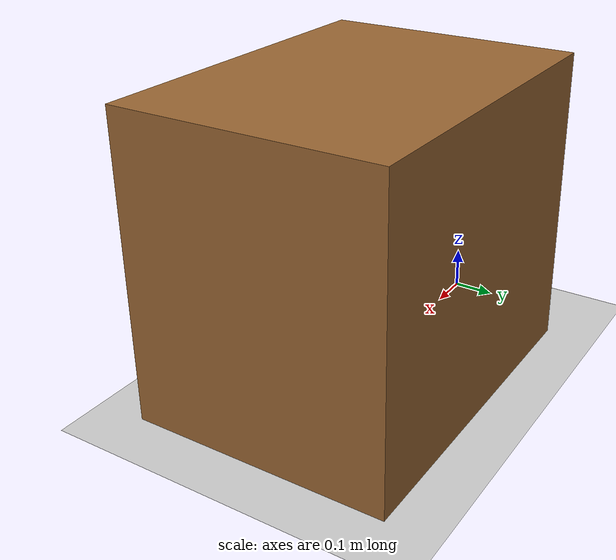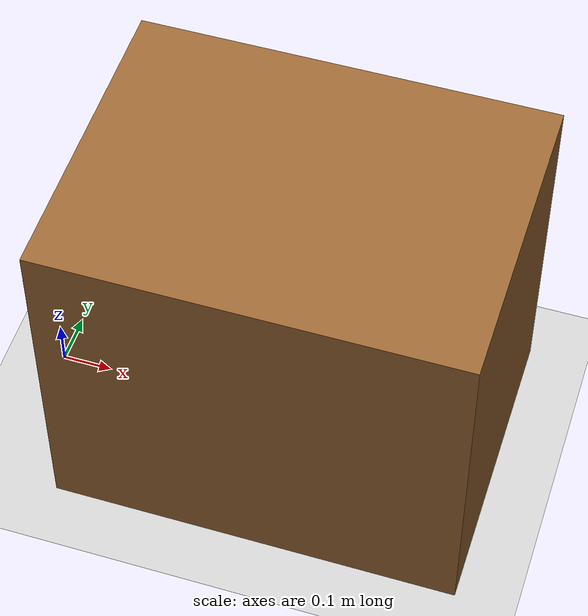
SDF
<?xml version="1.0"?>
<sdf version="1.6">
  <world name="arm_world">
    <plugin name="gazebo_ros_init" filename="libgazebo_ros_init.so"/>
    <plugin name="gazebo_ros_factory" filename="libgazebo_ros_factory.so"/>
    <plugin name="gazebo_ros_state" filename="libgazebo_ros_state.so"/>
    <include>
      <uri>model://sun</uri>
    </include>
    <include>
      <uri>model://ground_plane</uri>
    </include>

    <model name="table">
      <static>true</static>
      <pose>0.5 0 0.35 0 0 0</pose>
      <link name="link">
        <collision name="collision">
          <geometry>
            <box>
              <size>0.8 0.6 0.7</size>
            </box>
          </geometry>
        </collision>
        <visual name="visual">
          <geometry>
            <box>
              <size>0.8 0.6 0.7</size>
            </box>
          </geometry>
          <material>
            <ambient>0.6 0.4 0.2 1</ambient>
            <diffuse>0.6 0.4 0.2 1</diffuse>
          </material>
        </visual>
      </link>
    </model>

    <model name="overhead_camera_rig">
      <static>true</static>
      <pose>0.5 0 1.15 0 1.5708 0</pose>
      <link name="link">
        <sensor name="overhead_rgb_camera" type="camera">
          <update_rate>30</update_rate>
          <camera>
            <horizontal_fov>1.2</horizontal_fov>
            <image>
              <width>800</width>
              <height>600</height>
              <format>R8G8B8</format>
            </image>
            <clip>
              <near>0.1</near>
              <far>20.0</far>
            </clip>
          </camera>
          <plugin name="gazebo_ros_overhead_rgb_camera" filename="libgazebo_ros_camera.so">
            <ros>
              <namespace>/overhead_camera</namespace>
            </ros>
            <camera_name>overhead_rgb</camera_name>
            <image_topic_name>image_raw</image_topic_name>
            <camera_info_topic_name>camera_info</camera_info_topic_name>
            <frame_name>overhead_camera_link</frame_name>
          </plugin>
        </sensor>

        <sensor name="overhead_depth_camera" type="depth">
          <update_rate>30</update_rate>
          <camera>
            <horizontal_fov>1.2</horizontal_fov>
            <image>
              <width>800</width>
              <height>600</height>
              <format>R8G8B8</format>
            </image>
            <clip>
              <near>0.1</near>
              <far>20.0</far>
            </clip>
          </camera>
          <depth>
            <format>FLOAT32</format>
            <near>0.1</near>
            <far>20.0</far>
          </depth>
          <plugin name="gazebo_ros_overhead_depth_camera" filename="libgazebo_ros_camera.so">
            <ros>
              <namespace>/overhead_camera</namespace>
            </ros>
            <camera_name>overhead</camera_name>
            <image_topic_name>image_raw</image_topic_name>
            <camera_info_topic_name>camera_info</camera_info_topic_name>
            <frame_name>overhead_camera_link</frame_name>
          </plugin>
        </sensor>
      </link>
    </model>
  </world>
</sdf>
